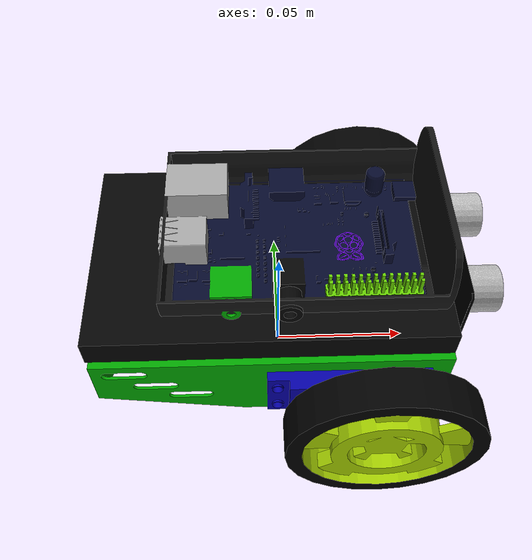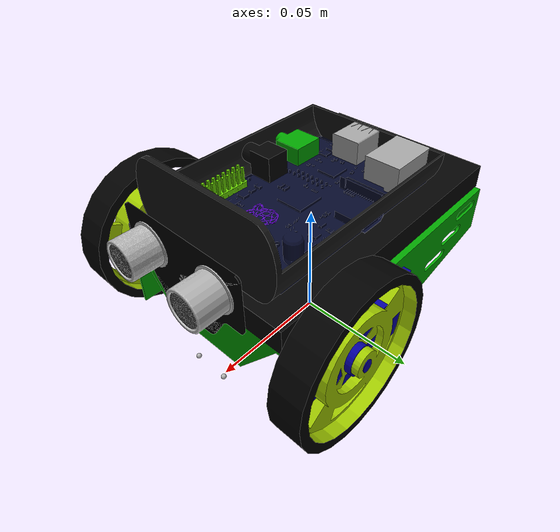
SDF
<?xml version='1.0'?> <sdf version='1.6'>
<model name="pibot">
    <link name="chasis">
    	<pose>0 0 0 0 0 0</pose>
    	<inertial>
          	<mass>10</mass>
          <inertia>
            <ixx>1</ixx>
          	<ixy>0</ixy>
          	<iyy>1</iyy>
          	<ixz>0</ixz>
          	<iyz>0</iyz>
          	<izz>1</izz>
          </inertia>
      	</inertial>
      	<collision name="collision">
          <geometry>
            <mesh>
              <uri>model://pibot_us/meshes/chasis.dae</uri>
          	</mesh>
          </geometry>

       	</collision>
      	<visual name="visual">
          <geometry>
            <mesh>
              <uri>model://pibot_us/meshes/chasis.dae</uri>
            </mesh>
          </geometry>
      	</visual>
    </link>

    <link name="us">
    	<pose>0 0 0 0 0 0</pose>
    	<inertial>
          	<mass>0.05</mass>
          <inertia>
            <ixx>1</ixx>
          	<ixy>0</ixy>
          	<iyy>1</iyy>
          	<ixz>0</ixz>
          	<iyz>0</iyz>
          	<izz>1</izz>
          </inertia>
      	</inertial>
      	<collision name="collision">
          <geometry>
            <mesh>
              <uri>model://pibot_us/meshes/us_sensor.dae</uri>
          	</mesh>
          </geometry>

       	</collision>
      	<visual name="visual">
          <geometry>
            <mesh>
              <uri>model://pibot_us/meshes/us_sensor.dae</uri>
            </mesh>
          </geometry>
      	</visual>
	<sensor name="sonar" type="sonar">
          <pose>0.083 -0.004 0.058 0 -1.5707 0</pose>
          <sonar>
            <min>0.03</min>
            <max>4.00</max>
            <radius>0.01</radius>
          </sonar>
          <always_on>1</always_on>
          <update_rate>30</update_rate>
          <visualize>true</visualize>
          <plugin name='camera_dump' filename='libsonarMBOT.so'/>
        </sensor>
    </link>

    <link name="ir">
    	<pose>0.056 0 0.010 0 0 0</pose>
	<inertial>
          	<mass>0.0001</mass>
          <inertia>
            <ixx>1</ixx>
          	<ixy>0</ixy>
          	<iyy>1</iyy>
          	<ixz>0</ixz>
          	<iyz>0</iyz>
          	<izz>1</izz>
          </inertia>
      	</inertial>
      	<visual name="visual_L">
	<pose>0 0.007 0 0 0 0</pose>
          <geometry>
		<sphere><radius>0.001</radius></sphere>
          </geometry>
      	</visual>
	<visual name="visual_R">
	<pose>0 -0.007 0 0 0 0</pose>
          <geometry>
		<sphere><radius>0.001</radius></sphere>
          </geometry>
      	</visual>
        <sensor name='irLeft' type='camera'>
          <pose>0 0.007 0 0 1.5707 0</pose>
          <camera>
            <horizontal_fov>1.047</horizontal_fov>
            <image>
              <width>4</width>
              <height>4</height>
            </image>
            <clip>
              <near>0.0001</near>
              <far>0.2</far>
            </clip>
          </camera>
          <always_on>1</always_on>
          <plugin name='camera_dump' filename='libirMBOT.so'/>
          <update_rate>30</update_rate>
        </sensor>
        <sensor name='irRight' type='camera'>
          <pose>0 -0.007 0 0 1.5707 0</pose>
          <camera>
            <horizontal_fov>1.047</horizontal_fov>
            <image>
              <width>4</width>
              <height>4</height>
            </image>
            <clip>
              <near>0.0001</near>
              <far>0.2</far>
            </clip>
          </camera>
          <always_on>1</always_on>
          <plugin name='camera_dump' filename='libirMBOT.so'/>
          <update_rate>30</update_rate>
        </sensor>
    </link>

     <link name="ball">
          <pose>-0.064 0 0.012 0 0 0</pose>
          <inertial>
          	<mass>2</mass>
          <inertia>
            <ixx>1</ixx>
            <ixy>0</ixy>
            <iyy>1</iyy>
            <ixz>0</ixz>
            <iyz>0</iyz>
            <izz>1</izz>
          </inertia>
      	</inertial>
        <collision name="collision">
          <pose>0 0 0 0 0 0 </pose>
          <geometry>
                          <mesh>
              <uri>model://pibot_us/meshes/ball.dae</uri>
          	</mesh>
                        </geometry>
        </collision>
        <visual name="visual">
          <geometry>
            <mesh>
              <uri>model://pibot_us/meshes/ball.dae</uri>
          	</mesh>
          </geometry>
        </visual>
    </link>

    <link name="left_wheel">
          <pose>0.032 -0.052 0.033 0 0 0</pose>
          <inertial>
          	<mass>0.08</mass>
          <inertia>
            <ixx>1</ixx>
            <ixy>0</ixy>
            <iyy>1</iyy>
            <ixz>0</ixz>
            <iyz>0</iyz>
            <izz>1</izz>
          </inertia>
      	</inertial>
        <collision name="collision">
          <pose>0 0 0 0 0 0 </pose>
          <geometry>
                          <mesh>
              <uri>model://pibot_us/meshes/left_wheel.dae</uri>
          	</mesh>
                        </geometry>
        </collision>
        <visual name="visual">
          <geometry>
            <mesh>
              <uri>model://pibot_us/meshes/left_wheel.dae</uri>
          	</mesh>
          </geometry>
        </visual>
    </link>
    <link name="right_wheel">
          <pose>0.032 0.052 0.033 0 0 0</pose>
          <inertial>
            <mass>0.08</mass>
          <inertia>
            <ixx>1</ixx>
            <ixy>0</ixy>
            <iyy>1</iyy>
            <ixz>0</ixz>
            <iyz>0</iyz>
            <izz>1</izz>
          </inertia>
        </inertial>
        <collision name="collision">
          <pose>0 0 0 0 0 0 </pose>
          <geometry>
                       <mesh>
              <uri>model://pibot_us/meshes/right_wheel.dae</uri>
            </mesh>
                        </geometry>
        </collision>
        <visual name="visual">
          <geometry>
            <mesh>
              <uri>model://pibot_us/meshes/right_wheel.dae</uri>
            </mesh>
          </geometry>
        </visual>
    </link>

    <joint type="revolute" name="ball">
        <pose>0 0 0 0 0 0</pose>
        <child>ball</child>
        <parent>chasis</parent>
        <axis>
          <xyz>1 1 1</xyz>
        </axis>
    </joint>
    <joint type="revolute" name="right_wheel_hinge">
        <pose>0 0 0 0 0 0</pose>
        <child>right_wheel</child>
        <parent>chasis</parent>
        <axis>
          <xyz>0 1 0</xyz>
        </axis>
    </joint>
    <joint type="revolute" name="left_wheel_hinge">
      <pose>0 0 0 0 0 0</pose>
      <child>left_wheel</child>
      <parent>chasis</parent>
      <axis>
        <xyz>0 1 0</xyz>
      </axis>
    </joint>
    <joint type="revolute" name="us_fix">
        <pose>0 0 0 0 0 0</pose>
        <child>us</child>
        <parent>chasis</parent>
        <axis>
          <xyz>0 0 0</xyz>
        </axis>
    </joint>
    <joint type="revolute" name="ir_fix">
        <pose>0 0 0 0 0 0</pose>
        <child>ir</child>
        <parent>chasis</parent>
        <axis>
          <xyz>0 0 0</xyz>
        </axis>
    </joint>

<plugin name="carMotors" filename="libmotorsMBOT.so"/>
<plugin name="pose3d" filename="libpose3dMBOT.so"/>

  </model>
</sdf>
